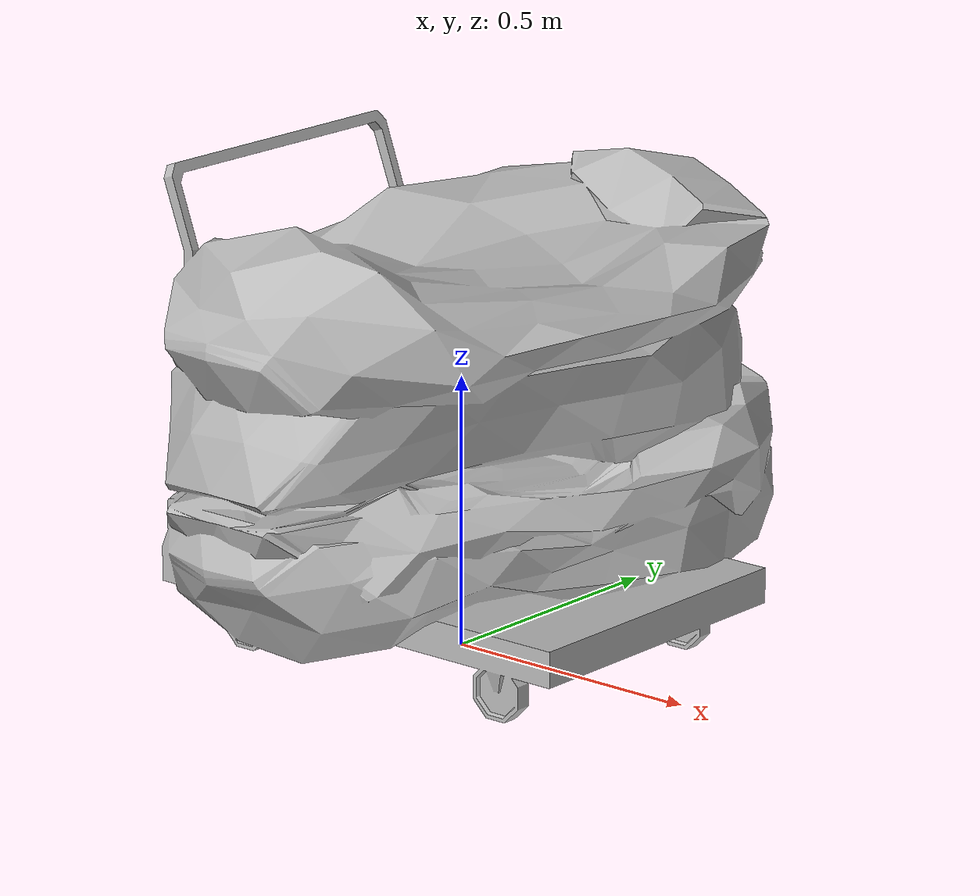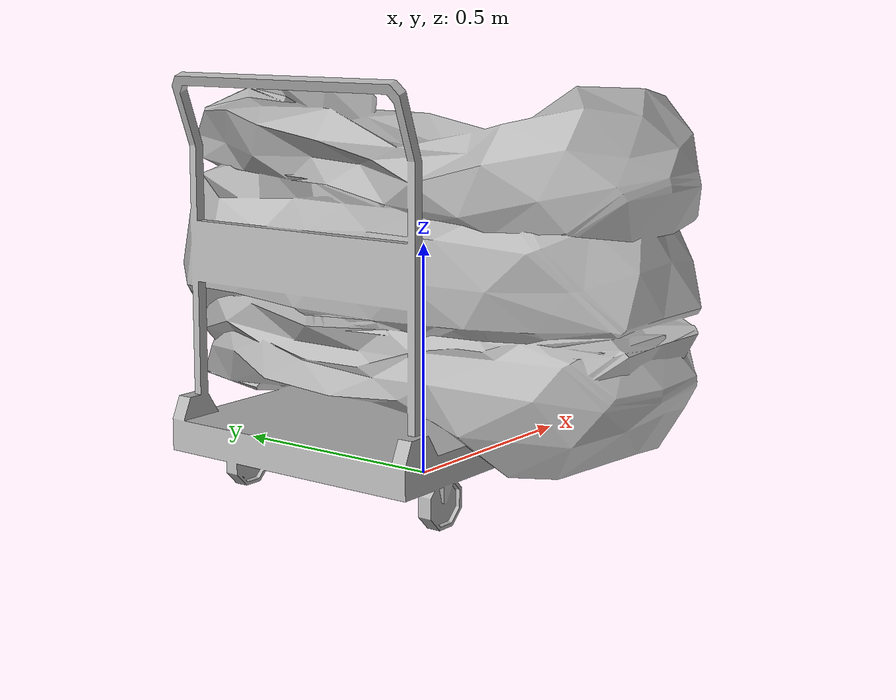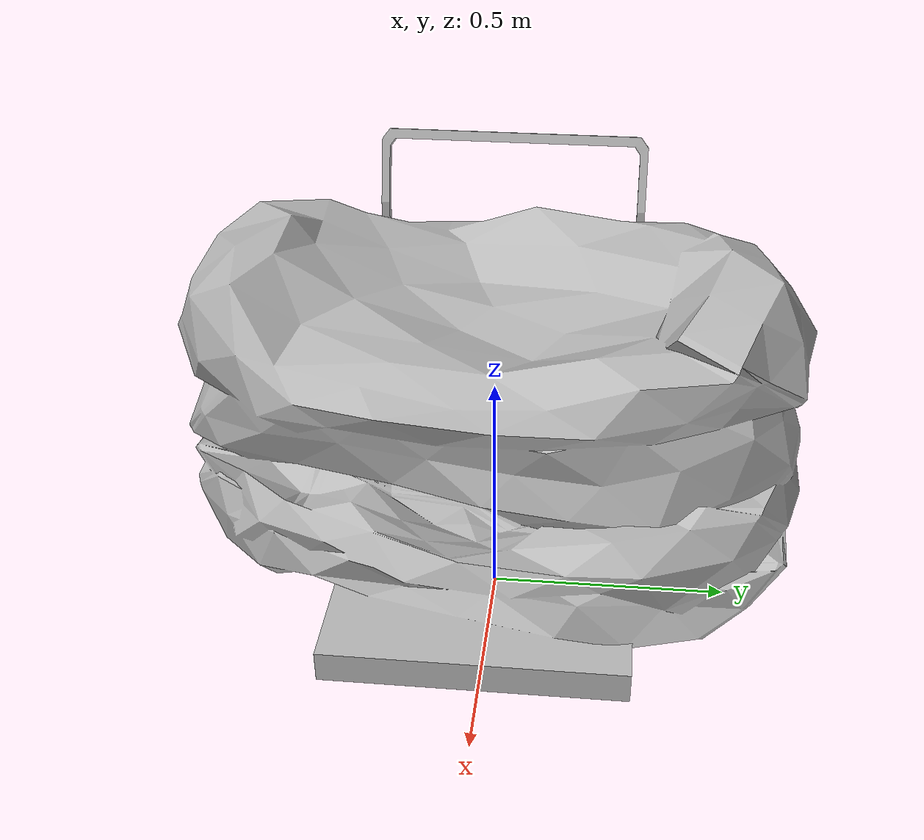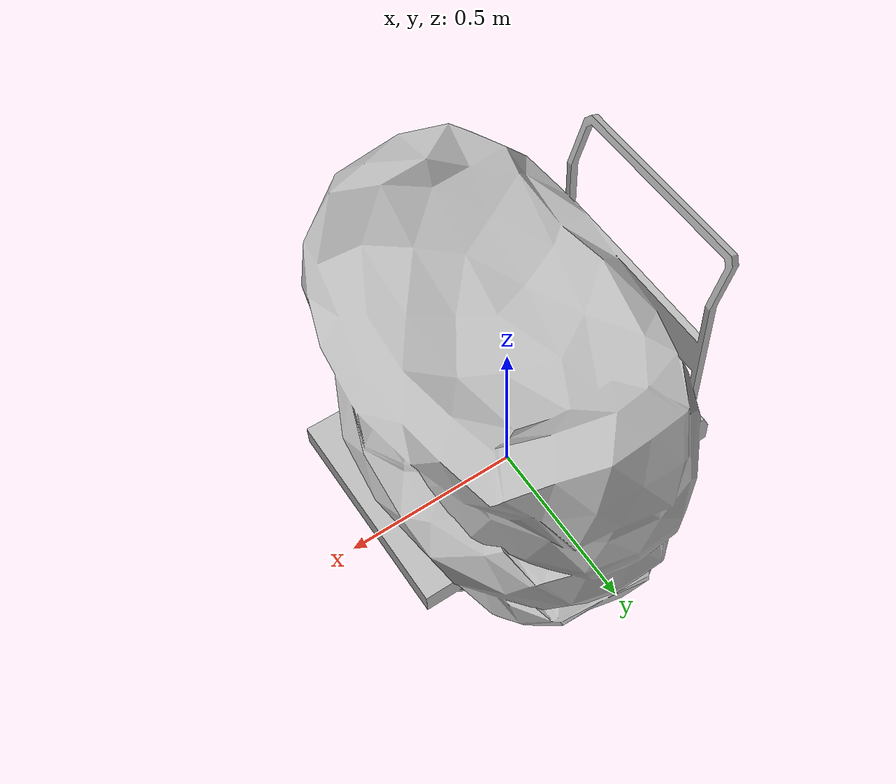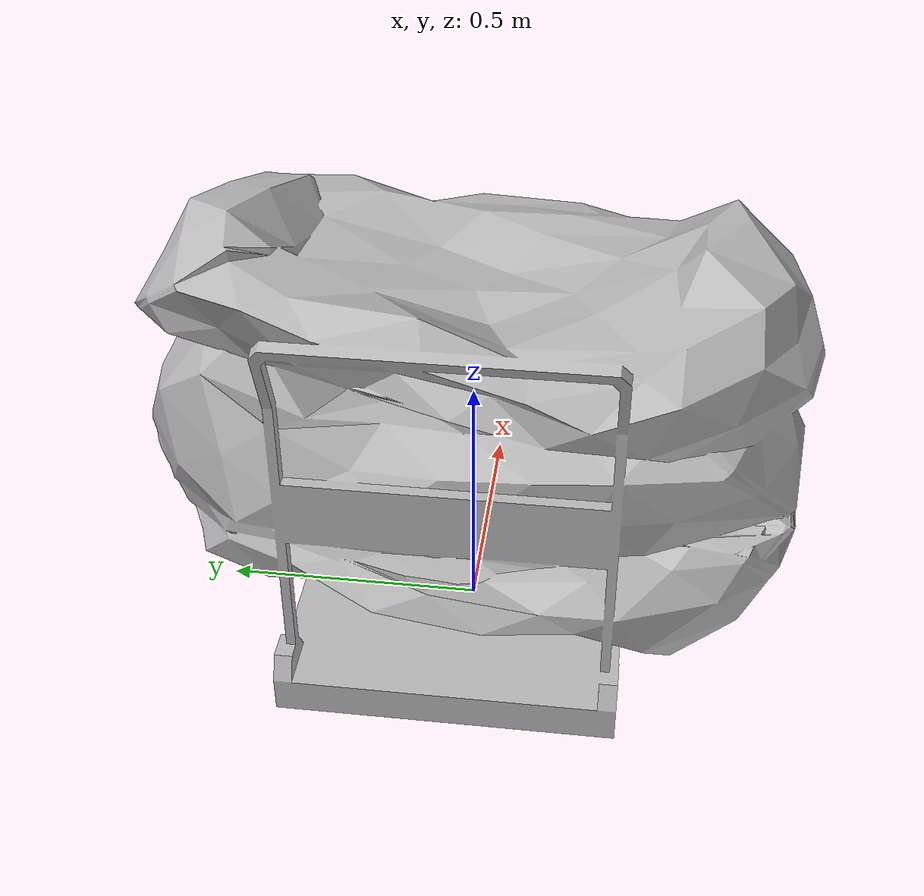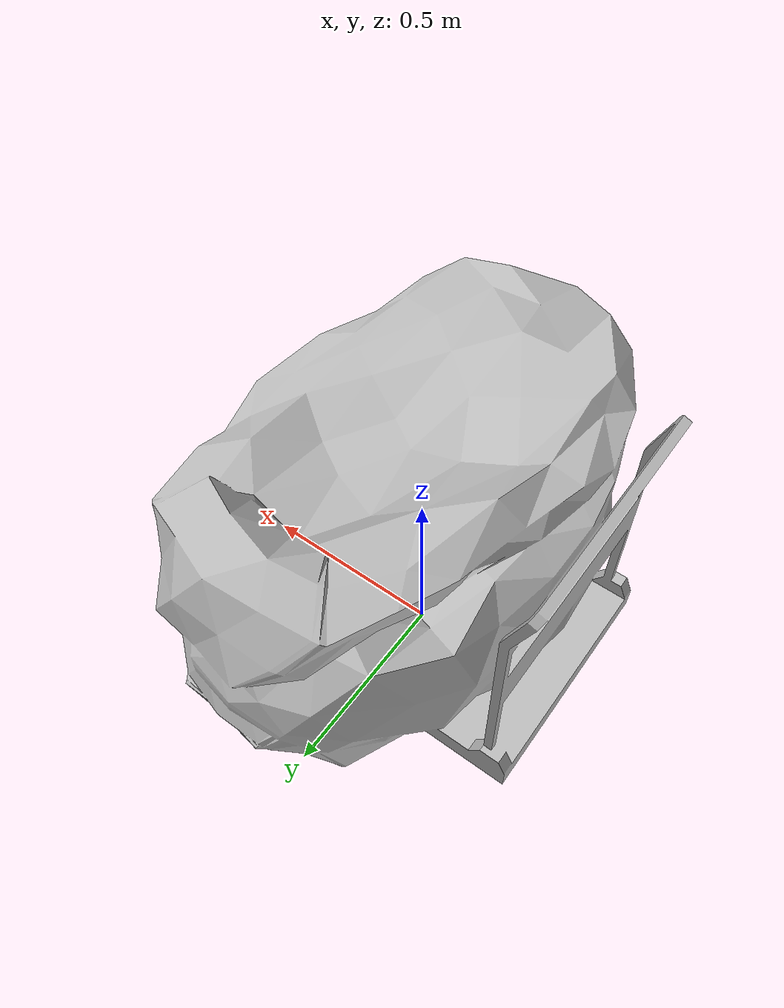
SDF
<?xml version="1.0"?>

<sdf version="1.6">
  <model name='ParkingTrolleyMax'>
    <link name="body">
      <pose>0 0 0 0 0 0</pose>

        <visual name="visual">
          <pose>0 0 0 0 0 0</pose>
          <geometry>
            <mesh><uri>model://ParkingTrolleyMax/meshes/ParkingTrolleyMax.obj</uri></mesh>
          </geometry>
        </visual>

        <collision name="collision">
          <pose>0 0 0 0 0 0</pose>
          <geometry>
            <mesh><uri>model://ParkingTrolleyMax/meshes/ParkingTrolleyMax.obj</uri></mesh>
          </geometry>
        </collision>

    </link>
  </model>
</sdf>
